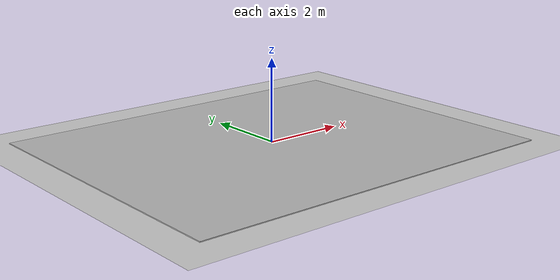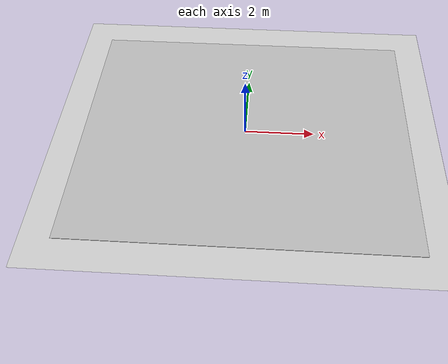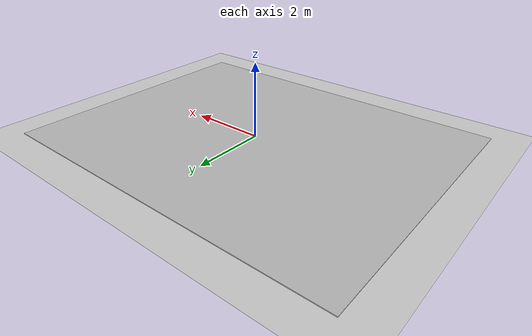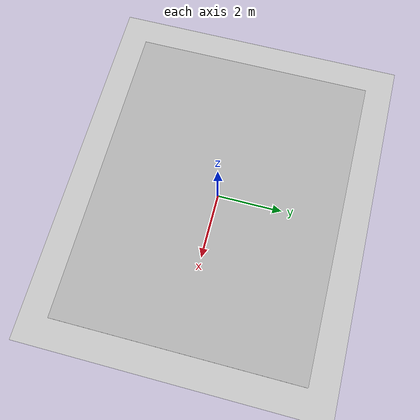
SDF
<?xml version="1.0" ?>
<sdf version="1.9">
  <world name="arena_world">
    <!-- 기본 물리 -->
    <physics type="ode">
      <real_time_update_rate>1000</real_time_update_rate>
    </physics>

    <!-- 🌞 조명 -->
    <light type="directional" name="sun">
      <cast_shadows>true</cast_shadows>
      <pose>0 0 10 0 0 0</pose>
      <diffuse>0.8 0.8 0.8 1</diffuse>
      <specular>0.2 0.2 0.2 1</specular>
      <attenuation>
          <range>1000</range>
          <constant>0.9</constant>
          <linear>0.01</linear>
          <quadratic>0.001</quadratic>
      </attenuation>
      <direction>-0.5 0.1 -0.9</direction>
    </light>

    <!-- 🏞️ 평면 (기본 바닥) -->
    <include>
      <uri>https://fuel.gazebosim.org/1.0/OpenRobotics/models/Ground Plane</uri>
    </include>

    <!-- 👉 여기에서 arena.sdf 모델 가져옴 -->
    <include>
      <uri>model://new_arena</uri>
      <pose>0 0 0.01 0 0 0</pose>
    </include>
  </world>
</sdf>

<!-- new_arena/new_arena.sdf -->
<sdf version='1.6'>
  <model name='AL301'>
    <link name='link'>
      <!-- Visual -->
      <visual name='visual'>
        <geometry>
          <mesh>
            <uri>model://new_arena/arena.dae</uri>
          </mesh>
        </geometry>
      </visual>

      <!-- Collision -->
      <collision name='collision'>
        <geometry>
          <mesh>
            <uri>model://new_arena/arena.dae</uri>
          </mesh>
        </geometry>
      </collision>

    </link>
  </model>
</sdf>
